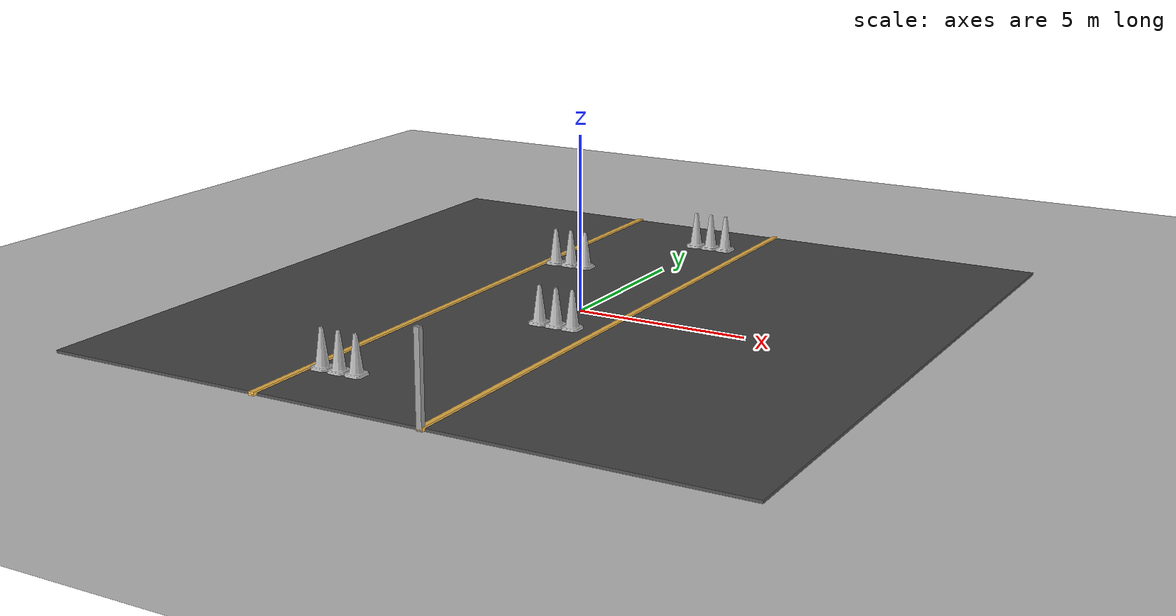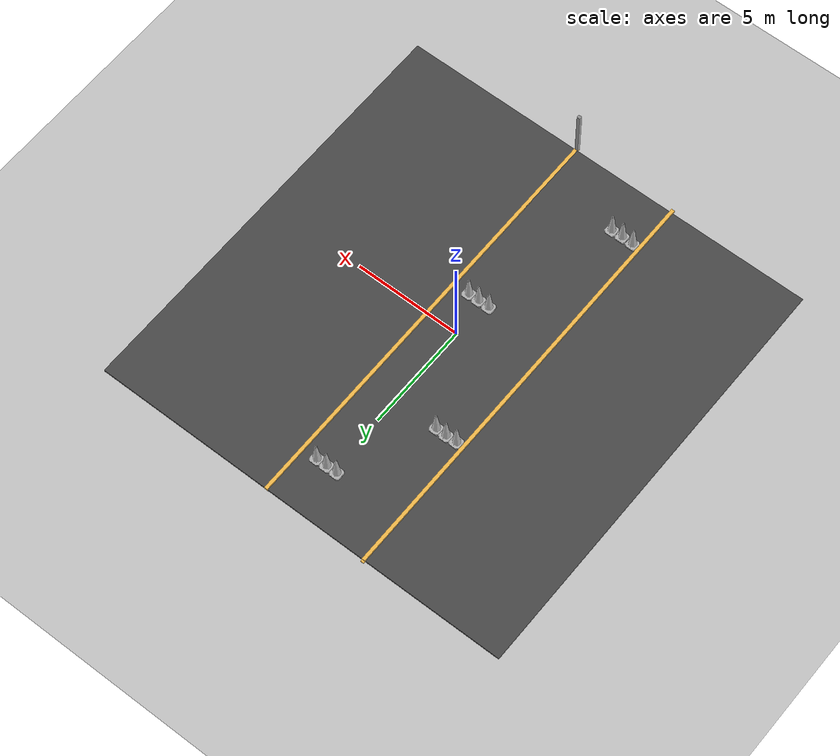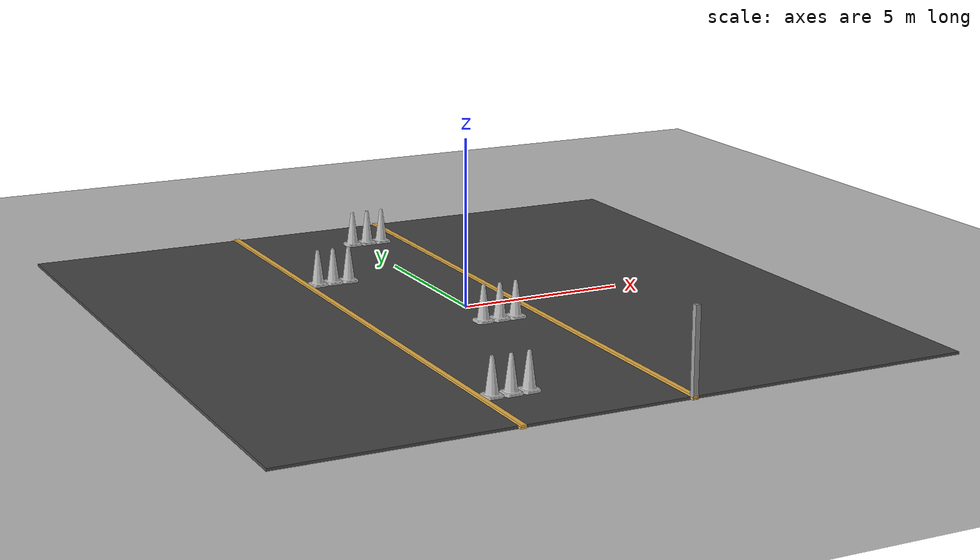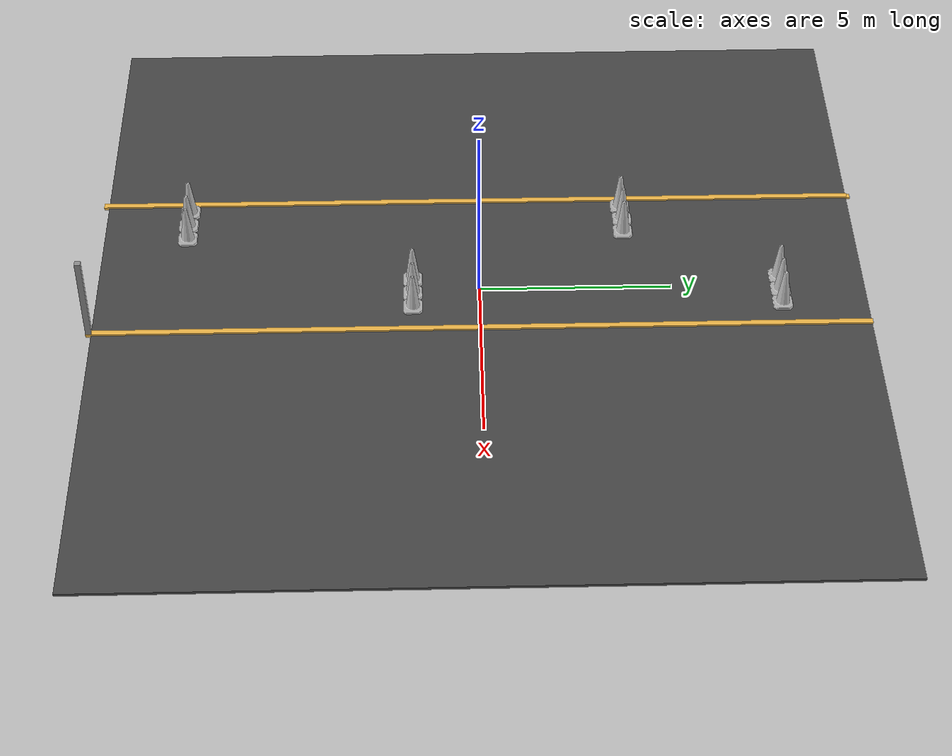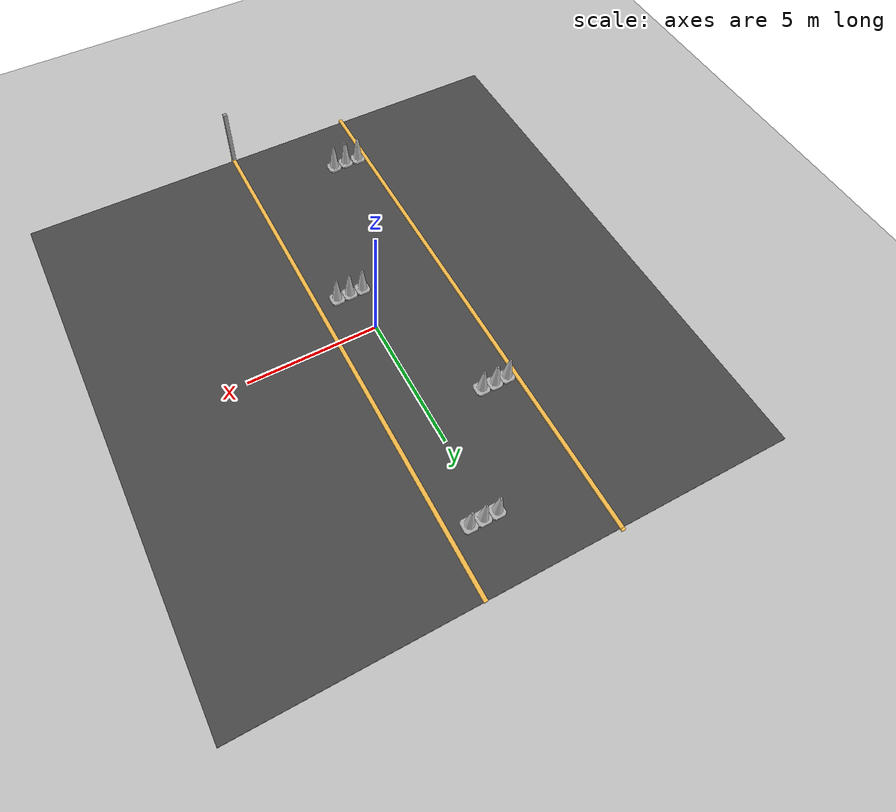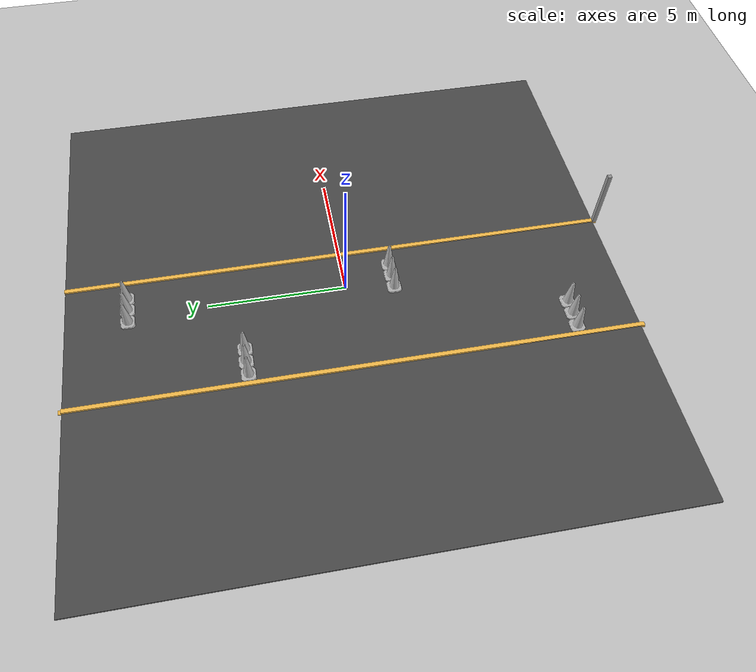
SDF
<sdf version="1.7">
 <world name="default">
  <light name="sun" type="directional">
   <pose>0 0 10 0 -0 0</pose>
   <diffuse>0.8 0.8 0.8 1</diffuse>
   <specular>0.2 0.2 0.2 1</specular>
   <attenuation>
    <range>1000</range>
    <constant>0.9</constant>
    <linear>0.01</linear>
    <quadratic>0.001</quadratic>
   </attenuation>
   <direction>-0.5 0.1 -0.9</direction>
   <spot><inner_angle>0</inner_angle><outer_angle>0</outer_angle><falloff>0</falloff></spot>
  </light>
  <model name="ground_plane">
   <static>1</static>
   <link name="link">
    <collision name="collision">
     <geometry><plane><normal>0 0 1</normal><size>100 100</size></plane></geometry>
     <surface>
      <contact><collide_bitmask>65535</collide_bitmask></contact>
      <friction><ode><mu>100</mu><mu2>50</mu2></ode></friction>
     </surface>
    </collision>
    <visual name="visual">
     <cast_shadows>0</cast_shadows>
     <geometry><plane><normal>0 0 1</normal><size>100 100</size></plane></geometry>
     <material>
      <script><uri>file://media/materials/scripts/gazebo.material</uri><name>Gazebo/Grey</name></script>
     </material>
    </visual>
   </link>
  </model>
  <gravity>0 0 -9.8</gravity>
  <magnetic_field>6e-06 2.3e-05 -4.2e-05</magnetic_field>
  <atmosphere type="adiabatic"/>
  <physics type="ode">
   <max_step_size>0.001</max_step_size>
   <real_time_factor>1</real_time_factor>
   <real_time_update_rate>1000</real_time_update_rate>
  </physics>
  <scene><ambient>0.4 0.4 0.4 1</ambient><background>0.7 0.7 0.7 1</background><shadows>1</shadows></scene>
  <spherical_coordinates>
   <surface_model>EARTH_WGS84</surface_model>
   <latitude_deg>0</latitude_deg>
   <longitude_deg>0</longitude_deg>
   <elevation>0</elevation>
   <heading_deg>0</heading_deg>
  </spherical_coordinates>
  <model name="fRRT1">
   <pose>-0.97 0.046 0 0 -0 0</pose>
   <link name="Wall_0">
    <collision name="Wall_0_Collision">
     <geometry><box><size>20.242 0.15 0.05</size></box></geometry>
     <pose>0 0 0.025 0 -0 0</pose>
    </collision>
    <visual name="Wall_0_Visual">
     <pose>0 0 0.025 0 -0 0</pose>
     <geometry><box><size>20.242 0.15 0.05</size></box></geometry>
     <material>
      <script><uri>file://media/materials/scripts/gazebo.material</uri><name>Gazebo/Grey</name></script>
      <ambient>1 0.764706 0.305882 1</ambient>
     </material>
     <meta><layer>0</layer></meta>
    </visual>
    <pose>-2.46 0 0 0 -0 -1.5708</pose>
   </link>
   <link name="Wall_2">
    <collision name="Wall_2_Collision">
     <geometry><box><size>20.15 0.15 0.05</size></box></geometry>
     <pose>0 0 0.025 0 -0 0</pose>
    </collision>
    <visual name="Wall_2_Visual">
     <pose>0 0 0.025 0 -0 0</pose>
     <geometry><box><size>20.15 0.15 0.05</size></box></geometry>
     <material>
      <script><uri>file://media/materials/scripts/gazebo.material</uri><name>Gazebo/Grey</name></script>
      <ambient>1 0.764706 0.305882 1</ambient>
     </material>
     <meta><layer>0</layer></meta>
    </visual>
    <pose>2.46 -0.046 0 0 -0 -1.5708</pose>
   </link>
   <link name="Wall_3">
    <collision name="Wall_3_Collision">
     <geometry><box><size>0.15 0.15 2.5</size></box></geometry>
     <pose>0 0 1.25 0 -0 0</pose>
    </collision>
    <visual name="Wall_3_Visual">
     <pose>0 0 1.25 0 -0 0</pose>
     <geometry><box><size>0.15 0.15 2.5</size></box></geometry>
     <material>
      <script><uri>file://media/materials/scripts/gazebo.material</uri><name>Gazebo/Grey</name></script>
      <ambient>1 1 1 1</ambient>
     </material>
     <meta><layer>0</layer></meta>
    </visual>
    <pose>2.46 -10.046 0 0 -0 0</pose>
   </link>
   <static>1</static>
  </model>
  <model name="asphalt_plane">
   <static>1</static>
   <link name="link">
    <collision name="collision"><geometry><box><size>20 20 0.1</size></box></geometry></collision>
    <visual name="visual">
     <cast_shadows>0</cast_shadows>
     <geometry><box><size>20 20 0.1</size></box></geometry>
     <material>
      <script>
       <uri>model://asphalt_plane/materials/scripts</uri>
       <uri>model://asphalt_plane/materials/textures</uri>
       <name>vrc/asphalt</name>
      </script>
     </material>
    </visual>
   </link>
   <pose>-0.025455 0.055756 0 0 -0 0</pose>
  </model>
  <model name="fRRT1_0">
   <pose>-0.95124 -0 0 0 -0 0</pose>
   <link name="Wall_5">
    <collision name="Wall_5_Collision">
     <geometry><box><size>20.15 0.15 0.1</size></box></geometry>
     <pose>0 0 0.05 0 -0 0</pose>
    </collision>
    <visual name="Wall_5_Visual">
     <pose>0 0 0.05 0 -0 0</pose>
     <geometry><box><size>20.15 0.15 0.1</size></box></geometry>
     <material>
      <script><uri>file://media/materials/scripts/gazebo.material</uri><name>Gazebo/Grey</name></script>
      <ambient>1 0.764706 0.305882 1</ambient>
     </material>
     <meta><layer>0</layer></meta>
    </visual>
    <pose>-2.46 0 0 0 -0 1.5708</pose>
   </link>
   <link name="Wall_7">
    <collision name="Wall_7_Collision">
     <geometry><box><size>20.15 0.15 0.1</size></box></geometry>
     <pose>0 0 0.05 0 -0 0</pose>
    </collision>
    <visual name="Wall_7_Visual">
     <pose>0 0 0.05 0 -0 0</pose>
     <geometry><box><size>20.15 0.15 0.1</size></box></geometry>
     <material>
      <script><uri>file://media/materials/scripts/gazebo.material</uri><name>Gazebo/Grey</name></script>
      <ambient>1 0.764706 0.305882 1</ambient>
     </material>
     <meta><layer>0</layer></meta>
    </visual>
    <pose>2.46 0 0 0 -0 1.5708</pose>
   </link>
   <static>1</static>
  </model>
  <model name="Construction Cone">
   <link name="link">
    <collision name="collision">
     <geometry>
      <mesh><scale>10 10 10</scale><uri>model://construction_cone/meshes/construction_cone.dae</uri></mesh>
     </geometry>
    </collision>
    <visual name="visual">
     <geometry>
      <mesh><scale>10 10 10</scale><uri>model://construction_cone/meshes/construction_cone.dae</uri></mesh>
     </geometry>
    </visual>
    <inertial>
     <inertia><ixx>1</ixx><ixy>0</ixy><ixz>0</ixz><iyy>1</iyy><iyz>0</iyz><izz>1</izz></inertia>
     <mass>1</mass>
    </inertial>
   </link>
   <pose>-3.08475 -7.7123 0.050001 -3e-06 1e-06 5e-06</pose>
  </model>
  <model name="Construction Cone_clone">
   <link name="link">
    <collision name="collision">
     <geometry>
      <mesh><scale>10 10 10</scale><uri>model://construction_cone/meshes/construction_cone.dae</uri></mesh>
     </geometry>
    </collision>
    <visual name="visual">
     <geometry>
      <mesh><scale>10 10 10</scale><uri>model://construction_cone/meshes/construction_cone.dae</uri></mesh>
     </geometry>
    </visual>
    <inertial>
     <inertia><ixx>1</ixx><ixy>0</ixy><ixz>0</ixz><iyy>1</iyy><iyz>0</iyz><izz>1</izz></inertia>
     <mass>1</mass>
    </inertial>
   </link>
   <pose>-2.54688 -7.73021 0.050002 -4e-06 4e-06 0</pose>
  </model>
  <model name="Construction Cone_clone_0">
   <link name="link">
    <collision name="collision">
     <geometry>
      <mesh><scale>10 10 10</scale><uri>model://construction_cone/meshes/construction_cone.dae</uri></mesh>
     </geometry>
    </collision>
    <visual name="visual">
     <geometry>
      <mesh><scale>10 10 10</scale><uri>model://construction_cone/meshes/construction_cone.dae</uri></mesh>
     </geometry>
    </visual>
    <inertial>
     <inertia><ixx>1</ixx><ixy>0</ixy><ixz>0</ixz><iyy>1</iyy><iyz>0</iyz><izz>1</izz></inertia>
     <mass>1</mass>
    </inertial>
   </link>
   <pose>-2.02105 -7.72039 0.05 0 -0 6.2e-05</pose>
  </model>
  <model name="Construction Cone_clone_1">
   <link name="link">
    <collision name="collision">
     <geometry>
      <mesh><scale>10 10 10</scale><uri>model://construction_cone/meshes/construction_cone.dae</uri></mesh>
     </geometry>
    </collision>
    <visual name="visual">
     <geometry>
      <mesh><scale>10 10 10</scale><uri>model://construction_cone/meshes/construction_cone.dae</uri></mesh>
     </geometry>
    </visual>
    <inertial>
     <inertia><ixx>1</ixx><ixy>0</ixy><ixz>0</ixz><iyy>1</iyy><iyz>0</iyz><izz>1</izz></inertia>
     <mass>1</mass>
    </inertial>
   </link>
   <pose>0.72 -1.73 0.049991 0 -0 0</pose>
  </model>
  <model name="Construction Cone_clone_2">
   <link name="link">
    <collision name="collision">
     <geometry>
      <mesh><scale>10 10 10</scale><uri>model://construction_cone/meshes/construction_cone.dae</uri></mesh>
     </geometry>
    </collision>
    <visual name="visual">
     <geometry>
      <mesh><scale>10 10 10</scale><uri>model://construction_cone/meshes/construction_cone.dae</uri></mesh>
     </geometry>
    </visual>
    <inertial>
     <inertia><ixx>1</ixx><ixy>0</ixy><ixz>0</ixz><iyy>1</iyy><iyz>0</iyz><izz>1</izz></inertia>
     <mass>1</mass>
    </inertial>
   </link>
   <pose>0.21 -1.73 0.05 1e-06 -0 0</pose>
  </model>
  <model name="Construction Cone_clone_3">
   <link name="link">
    <collision name="collision">
     <geometry>
      <mesh><scale>10 10 10</scale><uri>model://construction_cone/meshes/construction_cone.dae</uri></mesh>
     </geometry>
    </collision>
    <visual name="visual">
     <geometry>
      <mesh><scale>10 10 10</scale><uri>model://construction_cone/meshes/construction_cone.dae</uri></mesh>
     </geometry>
    </visual>
    <inertial>
     <inertia><ixx>1</ixx><ixy>0</ixy><ixz>0</ixz><iyy>1</iyy><iyz>0</iyz><izz>1</izz></inertia>
     <mass>1</mass>
    </inertial>
   </link>
   <pose>-0.31 -1.73 0.05 1e-06 -1e-06 0</pose>
  </model>
  <model name="Construction Cone_clone_4">
   <link name="link">
    <collision name="collision">
     <geometry>
      <mesh><scale>10 10 10</scale><uri>model://construction_cone/meshes/construction_cone.dae</uri></mesh>
     </geometry>
    </collision>
    <visual name="visual">
     <geometry>
      <mesh><scale>10 10 10</scale><uri>model://construction_cone/meshes/construction_cone.dae</uri></mesh>
     </geometry>
    </visual>
    <inertial>
     <inertia><ixx>1</ixx><ixy>0</ixy><ixz>0</ixz><iyy>1</iyy><iyz>0</iyz><izz>1</izz></inertia>
     <mass>1</mass>
    </inertial>
   </link>
   <pose>-3.07821 3.86607 0.05 0 -0 -0.019644</pose>
  </model>
  <model name="Construction Cone_clone_5">
   <link name="link">
    <collision name="collision">
     <geometry>
      <mesh><scale>10 10 10</scale><uri>model://construction_cone/meshes/construction_cone.dae</uri></mesh>
     </geometry>
    </collision>
    <visual name="visual">
     <geometry>
      <mesh><scale>10 10 10</scale><uri>model://construction_cone/meshes/construction_cone.dae</uri></mesh>
     </geometry>
    </visual>
    <inertial>
     <inertia><ixx>1</ixx><ixy>0</ixy><ixz>0</ixz><iyy>1</iyy><iyz>0</iyz><izz>1</izz></inertia>
     <mass>1</mass>
    </inertial>
   </link>
   <pose>-2.57143 3.89602 0.049999 -3e-06 -4e-06 0.002186</pose>
  </model>
  <model name="Construction Cone_clone_6">
   <link name="link">
    <collision name="collision">
     <geometry>
      <mesh><scale>10 10 10</scale><uri>model://construction_cone/meshes/construction_cone.dae</uri></mesh>
     </geometry>
    </collision>
    <visual name="visual">
     <geometry>
      <mesh><scale>10 10 10</scale><uri>model://construction_cone/meshes/construction_cone.dae</uri></mesh>
     </geometry>
    </visual>
    <inertial>
     <inertia><ixx>1</ixx><ixy>0</ixy><ixz>0</ixz><iyy>1</iyy><iyz>0</iyz><izz>1</izz></inertia>
     <mass>1</mass>
    </inertial>
   </link>
   <pose>-2.06809 3.88418 0.05 -0 2e-06 0.002107</pose>
  </model>
  <model name="Construction Cone_clone_7">
   <link name="link">
    <collision name="collision">
     <geometry>
      <mesh><scale>10 10 10</scale><uri>model://construction_cone/meshes/construction_cone.dae</uri></mesh>
     </geometry>
    </collision>
    <visual name="visual">
     <geometry>
      <mesh><scale>10 10 10</scale><uri>model://construction_cone/meshes/construction_cone.dae</uri></mesh>
     </geometry>
    </visual>
    <inertial>
     <inertia><ixx>1</ixx><ixy>0</ixy><ixz>0</ixz><iyy>1</iyy><iyz>0</iyz><izz>1</izz></inertia>
     <mass>1</mass>
    </inertial>
   </link>
   <pose>-0.24 7.84 0.05 -0 -0 -0</pose>
  </model>
  <model name="Construction Cone_clone_8">
   <link name="link">
    <collision name="collision">
     <geometry>
      <mesh><scale>10 10 10</scale><uri>model://construction_cone/meshes/construction_cone.dae</uri></mesh>
     </geometry>
    </collision>
    <visual name="visual">
     <geometry>
      <mesh><scale>10 10 10</scale><uri>model://construction_cone/meshes/construction_cone.dae</uri></mesh>
     </geometry>
    </visual>
    <inertial>
     <inertia><ixx>1</ixx><ixy>0</ixy><ixz>0</ixz><iyy>1</iyy><iyz>0</iyz><izz>1</izz></inertia>
     <mass>1</mass>
    </inertial>
   </link>
   <pose>0.267 7.84 0.05 0 2e-06 0</pose>
  </model>
  <model name="Construction Cone_clone_9">
   <link name="link">
    <collision name="collision">
     <geometry>
      <mesh><scale>10 10 10</scale><uri>model://construction_cone/meshes/construction_cone.dae</uri></mesh>
     </geometry>
    </collision>
    <visual name="visual">
     <geometry>
      <mesh><scale>10 10 10</scale><uri>model://construction_cone/meshes/construction_cone.dae</uri></mesh>
     </geometry>
    </visual>
    <inertial>
     <inertia><ixx>1</ixx><ixy>0</ixy><ixz>0</ixz><iyy>1</iyy><iyz>0</iyz><izz>1</izz></inertia>
     <mass>1</mass>
    </inertial>
   </link>
   <pose>0.77 7.84 0.05 0 -0 0</pose>
  </model>
 </world>
</sdf>
